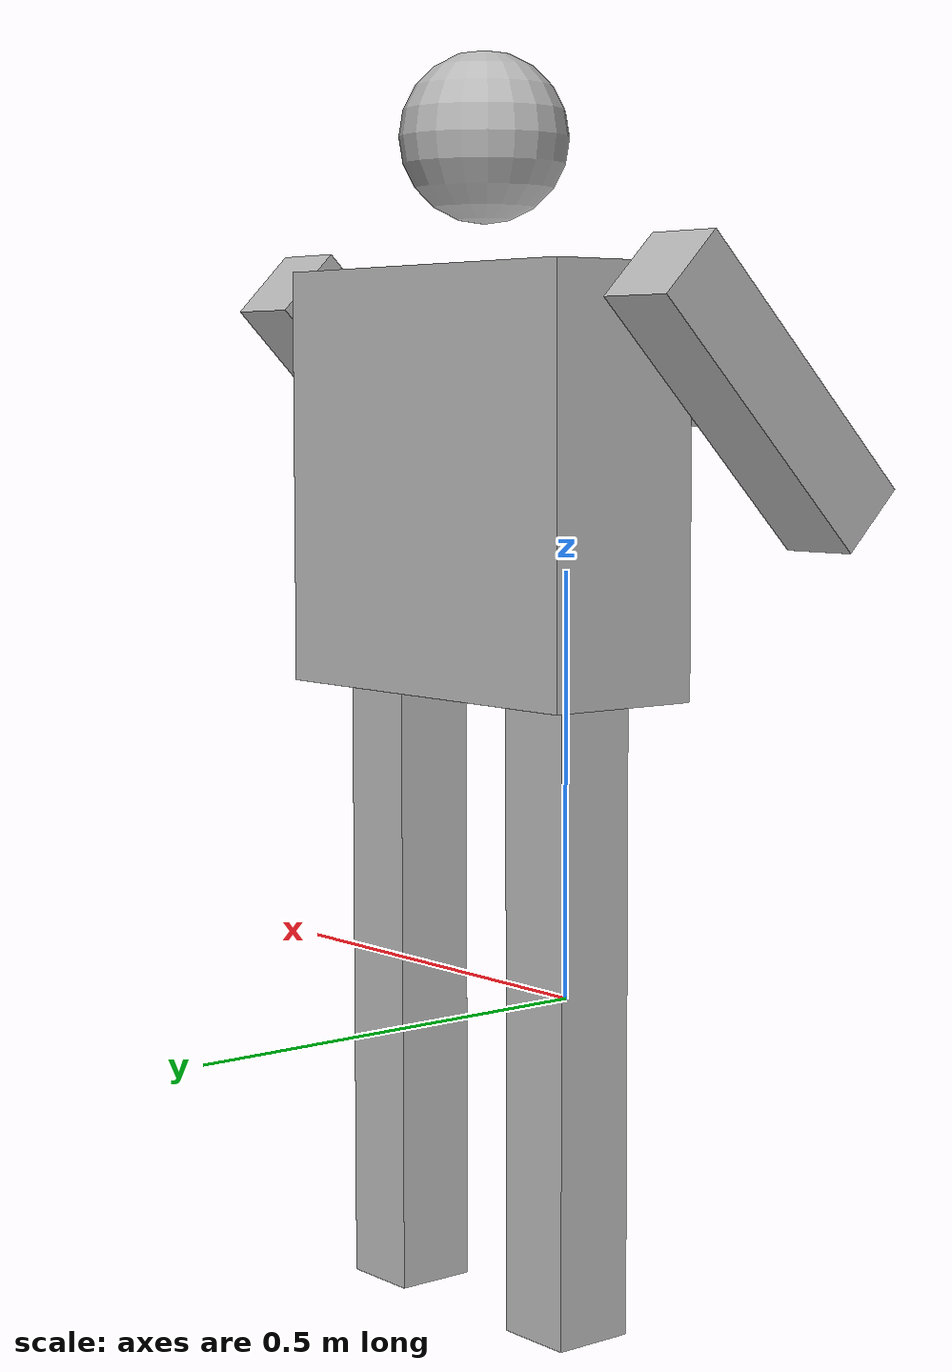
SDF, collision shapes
<?xml version='1.0'?>
<sdf version='1.4'>
  <model name="person">
  <static>true</static>
	<link name='Lleg'>
            <pose>0 0 0 0 0 0</pose>

            <collision name='collision'>
              <geometry>
                <box>
                  <size>.1 .1 .8</size>
                </box>
              </geometry>
            </collision>

            <visual name='visual'>
              <geometry>
                <box>
                  <size>.1 .1 .8</size>
                </box>
              </geometry>
            </visual>
          </link>
	<link name='Rleg'>
            <pose>0.3 0 0 0 0 0</pose>

            <collision name='collision'>
              <geometry>
                <box>
                  <size>.1 .1 .8</size>
                </box>
              </geometry>
            </collision>

            <visual name='visual'>
              <geometry>
                <box>
                  <size>.1 .1 .8</size>
                </box>
              </geometry>
            </visual>
          </link>

	<link name='Torso'>
            <pose>0.15 0 0.6 0 0 0</pose>

            <collision name='collision'>
              <geometry>
                <box>
                  <size>.5 .2 .5</size>
                </box>
              </geometry>
            </collision>

            <visual name='visual'>
              <geometry>
                <box>
                  <size>.5 .2 .5</size>
                </box>
              </geometry>
            </visual>
          </link>
	<link name='Larm'>
            <pose>0.5 -0.1 .7 -0.785 0 0</pose>

            <collision name='collision'>
              <geometry>
                <box>
                  <size>.1 .1 .4</size>
                </box>
              </geometry>
            </collision>

            <visual name='visual'>
              <geometry>
                <box>
                  <size>.1 .1 .4</size>
                </box>
              </geometry>
            </visual>
          </link>
	<link name='Rarm'>
            <pose>-0.2 -0.1 .7 -0.785 0 0</pose>

            <collision name='collision'>
              <geometry>
                <box>
                  <size>.1 .1 .4</size>
                </box>
              </geometry>
            </collision>

            <visual name='visual'>
              <geometry>
                <box>
                  <size>.1 .1 .4</size>
                </box>
              </geometry>
            </visual>
          </link>
	<link name='Head'>
            <pose>0.15 0 1 0 0 0</pose>

            <collision name='collision'>
              <geometry>
               <sphere>
                <radius>.1</radius>
              </sphere>
              </geometry>
            </collision>

            <visual name='visual'>
              <geometry>
                <sphere>
                <radius>.1</radius>
              </sphere>
              </geometry>
            </visual>
          </link>
<include>
      <uri>model://kinect</uri>
      <pose>0.15 -0.2 0.7 0 0 -1.5</pose>
    </include>
    <joint name="kinect_joint" type="fixed">
      <child>kinect::link</child>
      <parent>chassis</parent>
    </joint>
</model>
</sdf>

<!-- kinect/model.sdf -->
<sdf version="1.5">
  <model name="kinect">
    <pose>0 0 0.036 0 0 0</pose>
    <link name="link">
      <inertial>
        <mass>0.1</mass>
      </inertial>
      <collision name="collision">
        <geometry>
          <box>
            <size>0.073000 0.276000 0.072000</size>
          </box>
        </geometry>
      </collision>
      <visual name="visual">
        <geometry>
          <mesh>
            <uri>model://kinect/meshes/kinect.dae</uri>
          </mesh>
        </geometry>
      </visual>
      <sensor name="camera" type="depth">
        <update_rate>20</update_rate>
        <camera>
          <horizontal_fov>1.047198</horizontal_fov>
          <image>
            <width>640</width>
            <height>480</height>
            <format>R8G8B8</format>
          </image>
          <clip>
            <near>0.05</near>
            <far>3</far>
          </clip>
        </camera>
        <plugin name="camera_plugin" filename="libgazebo_ros_openni_kinect.so">
          <baseline>0.2</baseline>
          <alwaysOn>true</alwaysOn>
          <updateRate>0.0</updateRate>
          <cameraName>camera_ir</cameraName>
          <imageTopicName>/camera/rgb/image_rect_color</imageTopicName>
          <cameraInfoTopicName>/camera/rgb/camera_info</cameraInfoTopicName>
          <depthImageTopicName>/camera/depth_registered/image_raw</depthImageTopicName>
          <depthImageCameraInfoTopicName>/camera/depth_registered/camera_info</depthImageCameraInfoTopicName>
          <pointCloudTopicName>/camera/depth_registered/points</pointCloudTopicName>
          <frameName>camera_link</frameName>
          <pointCloudCutoff>0.5</pointCloudCutoff>
          <pointCloudCutoffMax>3.0</pointCloudCutoffMax>
          <distortionK1>0</distortionK1>
          <distortionK2>0</distortionK2>
          <distortionK3>0</distortionK3>
          <distortionT1>0</distortionT1>
          <distortionT2>0</distortionT2>
          <CxPrime>0</CxPrime>
          <Cx>0</Cx>
          <Cy>0</Cy>
          <focalLength>0</focalLength>
          <hackBaseline>0</hackBaseline>
        </plugin>
      </sensor>
    </link>
  </model>
</sdf>
